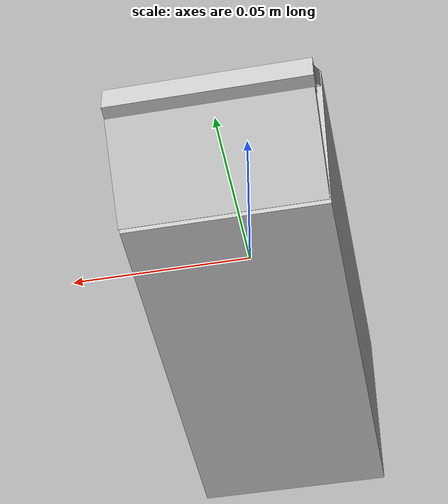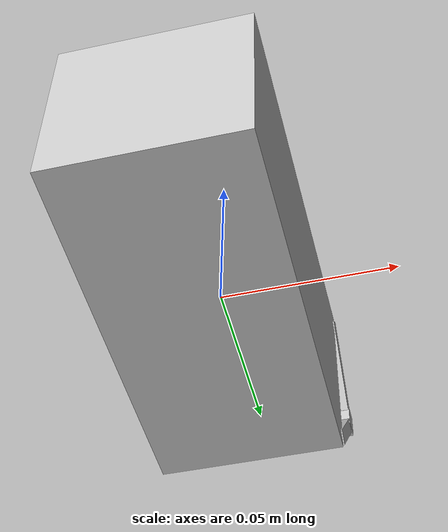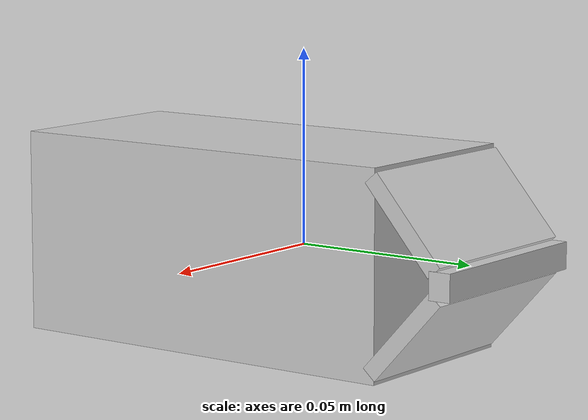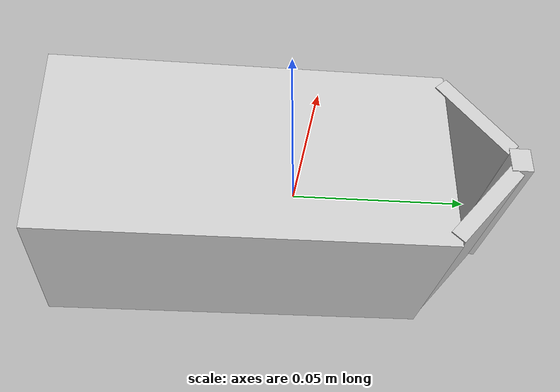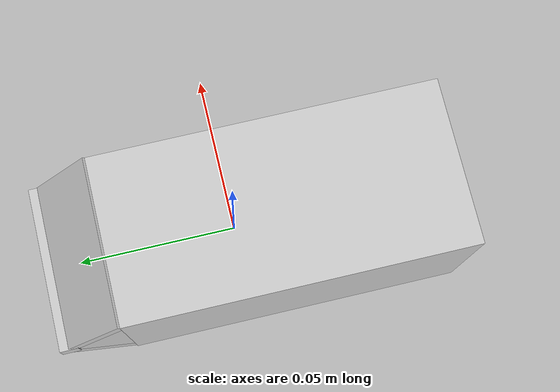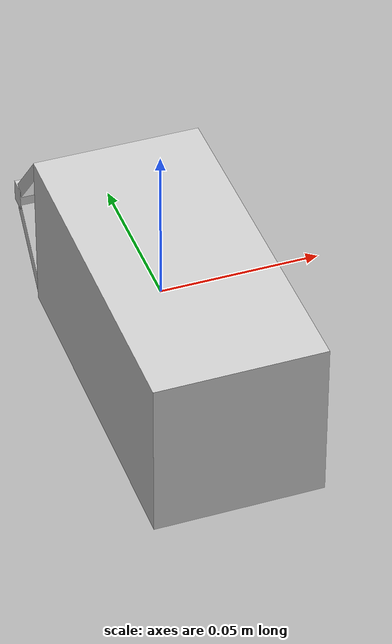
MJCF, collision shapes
<mujoco model="textured">
  <compiler meshdir="F:/--CodeRepo/--CodeRepo/Research/___Mujoco/mujoco/mujoco/icse27/mujoco_rl_fuzz_2.0/.cache/repos/libero/libero/libero/assets/stable_hope_objects/orange_juice" texturedir="F:/--CodeRepo/--CodeRepo/Research/___Mujoco/mujoco/mujoco/icse27/mujoco_rl_fuzz_2.0/.cache/repos/libero/libero/libero/assets/stable_hope_objects/orange_juice" assetdir="F:/--CodeRepo/--CodeRepo/Research/___Mujoco/mujoco/mujoco/icse27/mujoco_rl_fuzz_2.0/.cache/repos/libero/libero/libero/assets/stable_hope_objects/orange_juice"/><asset>
  <texture file="texture_map.png" name="tex-textured" type="2d"/>
  <material name="textured" reflectance="0.5" texrepeat="1 1" texture="tex-textured" texuniform="false"/>
  <mesh file="visual/textured_vis.msh" name="textured_vis" scale="0.0075 0.0075 0.0075"/></asset>
  <worldbody>
    <body>
      <body name="object">
      <geom solimp="0.998 0.998 0.001" solref="0.001 1" density="100" friction="0.95 0.3 0.1" type="mesh" mesh="textured_vis" conaffinity="0" contype="0" group="1" material="textured"/><geom solimp="0.998 0.998 0.001" solref="0.001 1" density="100" friction="0.95 0.3 0.1" type="box" pos="-0.00037 -0.01500 0.00000" quat="0.70711 0.70711 0.00000 -0.00000" size="0.02625 0.02625 0.05475" group="0" rgba="0.8 0.8 0.8 0.3"/><geom solimp="0.998 0.998 0.001" solref="0.001 1" density="100" friction="0.95 0.3 0.1" type="box" pos="-0.00005 0.04784 -0.01352" quat="0.28687 -0.64630 -0.28687 0.64630" size="0.00218 0.01381 0.02631" group="0" rgba="0.8 0.8 0.8 0.3"/><geom solimp="0.998 0.998 0.001" solref="0.001 1" density="100" friction="0.95 0.3 0.1" type="box" pos="-0.00005 0.04784 0.01344" quat="0.29630 0.64203 -0.29630 -0.64203" size="0.00218 0.01381 0.02631" group="0" rgba="0.8 0.8 0.8 0.3"/><geom solimp="0.998 0.998 0.001" solref="0.001 1" density="100" friction="0.95 0.3 0.1" type="box" pos="-0.00005 0.05849 -0.00005" quat="0.50000 0.50000 -0.50000 -0.50000" size="0.00295 0.00348 0.02650" group="0" rgba="0.8 0.8 0.8 0.3"/></body>
      <site rgba="0 0 0 0" size="0.005" pos="0 0 -0.06" name="bottom_site"/>
      <site rgba="0 0 0 0" size="0.005" pos="0 0 0.04" name="top_site"/>
      <site rgba="0 0 0 0" size="0.005" pos="0.025 0.025 0" name="horizontal_radius_site"/>
    </body>
  </worldbody>
</mujoco>
